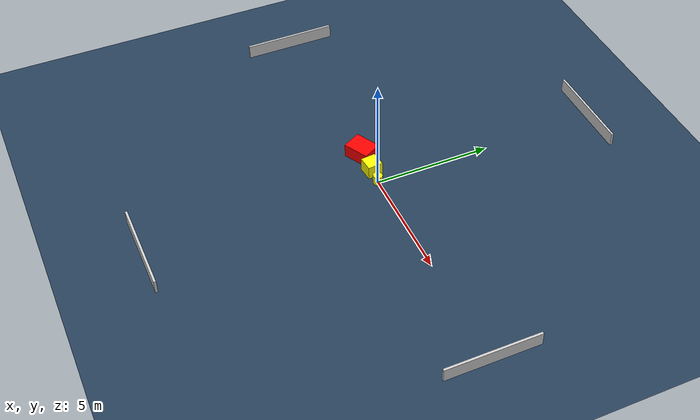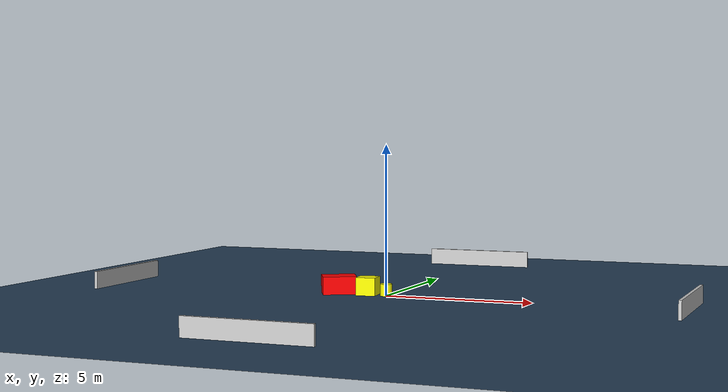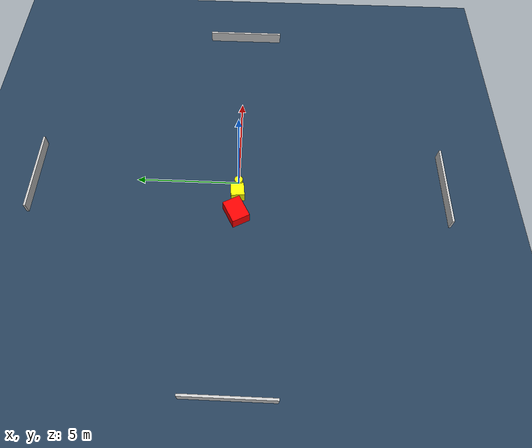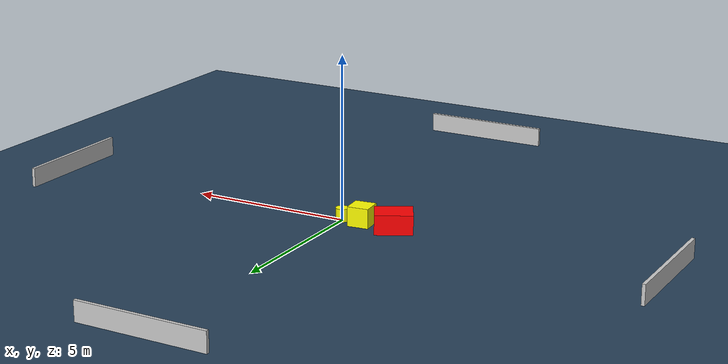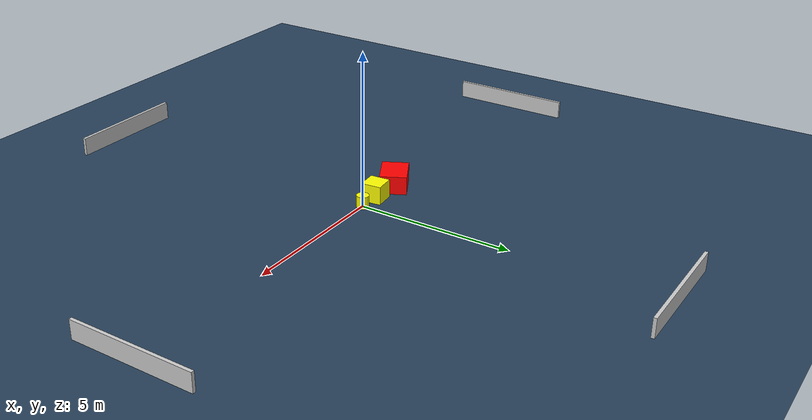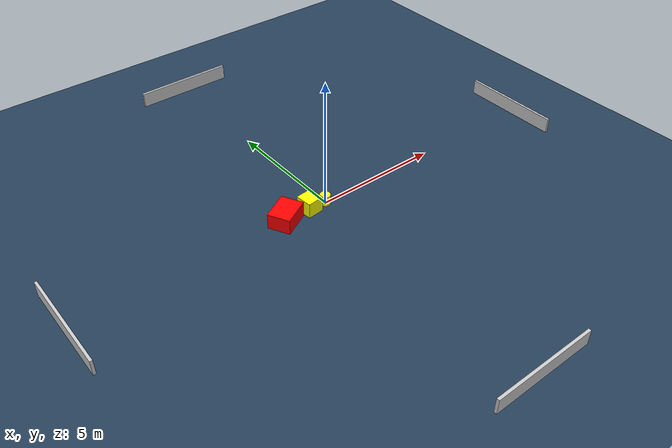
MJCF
<?xml version="1.0" ?>
<mujoco model="generated_environment">
  <option timestep="0.01" integrator="RK4" cone="elliptic"/>
  <default>
    <geom density="1"/>
  </default>
  <asset>
    <texture builtin="gradient" height="3072" name="skybox" rgb1="0.3 0.5 0.7" rgb2="0 0 0" type="skybox" width="512"/>
    <texture builtin="checker" height="300" name="groundplane" rgb1="0.2 0.3 0.4" rgb2="0.1 0.2 0.3" type="2d" width="300"/>
    <material name="groundplane" reflectance="0.2" texrepeat="5 5" texture="groundplane"/>
  </asset>
  <worldbody>
    <light dir="0 0 -1" directional="true" pos="0 0 1.5"/>
    <geom condim="3" friction="0.5 0.005 0.001" material="groundplane" name="floor" pos="0 0 0" size="0 0 0.05" type="plane"/>
    <body name="walls">
      <geom name="wall_1" condim="4" pos="-10.0 0.0 0.3" rgba="0.800000011920929 0.800000011920929 0.800000011920929 1.0" size="0.05 2.0 0.3" type="box"/>
      <geom name="wall_2" condim="4" pos="10.0 0.0 0.3" rgba="0.800000011920929 0.800000011920929 0.800000011920929 1.0" size="0.05 2.0 0.3" type="box"/>
      <geom name="wall_3" condim="4" pos="0.0 -10.0 0.3" rgba="0.800000011920929 0.800000011920929 0.800000011920929 1.0" size="2.0 0.05 0.3" type="box"/>
      <geom name="wall_4" condim="4" pos="0.0 10.0 0.3" rgba="0.800000011920929 0.800000011920929 0.800000011920929 1.0" size="2.0 0.05 0.3" type="box"/>
    </body>
    <body name="robot">
      <joint name="joint_x" type="slide" pos="0 0 0" axis="1 0 0"/>
      <joint name="joint_y" type="slide" pos="0 0 0" axis="0 1 0"/>
      <geom name="robot" type="cylinder" pos="0.0 0.0 0.2" size="0.2 0.2 0.0" mass="5.0" friction="1.0 0.005 0.0001" condim="4" rgba="1.0 1.0 0.0 1.0"/>
    </body>
    <body name="obstacle_1_movable">
      <geom name="obstacle_1_movable" condim="4" pos="-0.6738722005674707 0.032316762515617416 0.3" euler="0 0 95.62768023281525" friction="0.0 0.005 0.001" rgba="1.0 1.0 0.0 1.0" size="0.32226131266535163 0.32614928966606965 0.3" type="box" mass="0.1"/>
      <joint type="free"/>
    </body>
    <body name="obstacle_2_static">
      <geom name="obstacle_2_static" condim="4" pos="-1.7369024164439264 0.050085043940377806 0.3" euler="0 0 27.9822763812344" friction="0.0 0.005 0.001" rgba="1.0 0.0 0.0 1.0" size="0.5667195215205132 0.43440322233906203 0.3" type="box"/>
    </body>
  </worldbody>
  <actuator>
    <motor name="actuator_x" joint="joint_x" gear="1" ctrlrange="-1 1"/>
    <motor name="actuator_y" joint="joint_y" gear="1" ctrlrange="-1 1"/>
  </actuator>
</mujoco>
